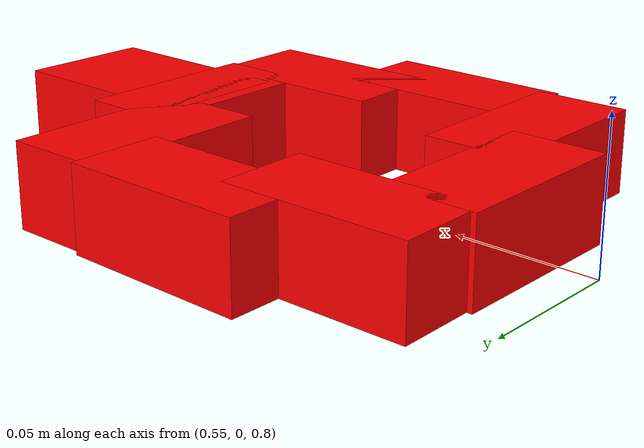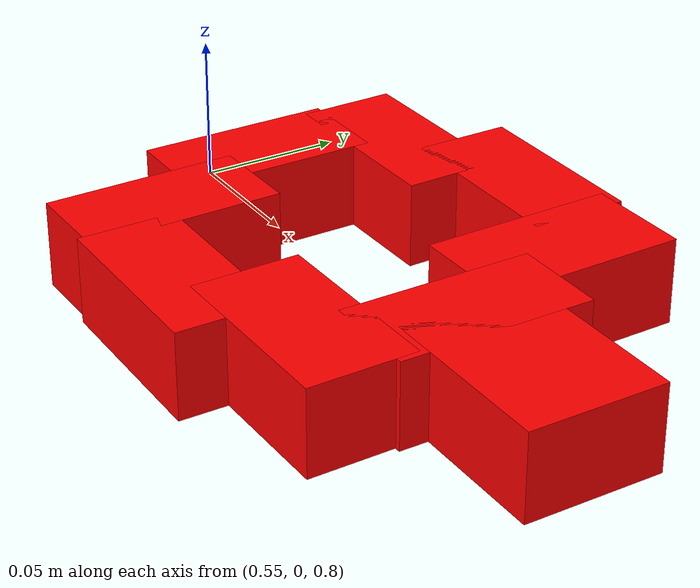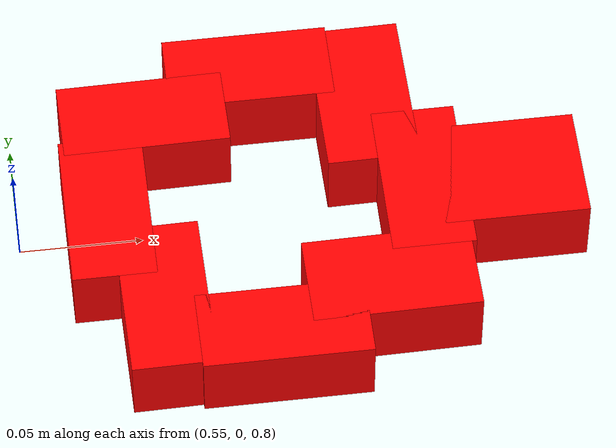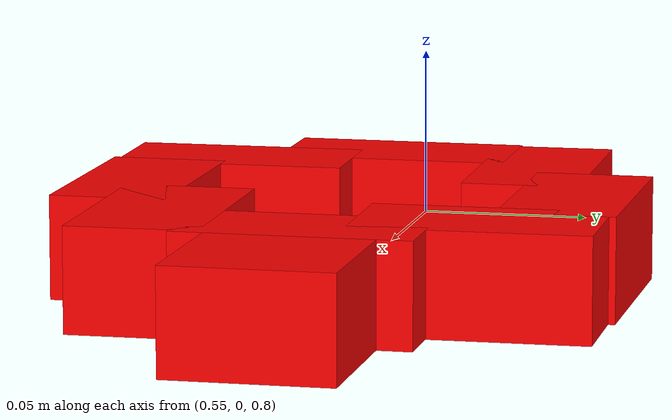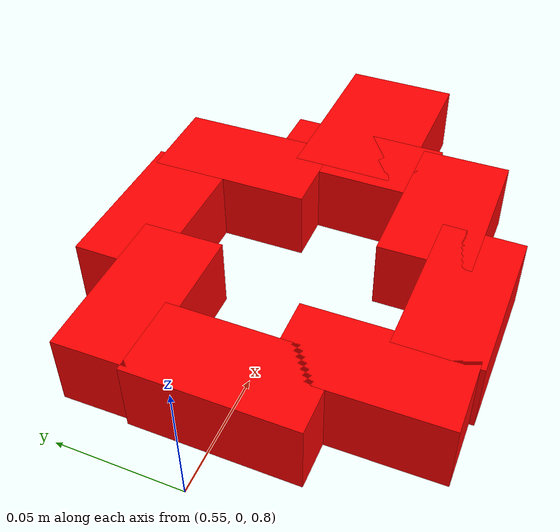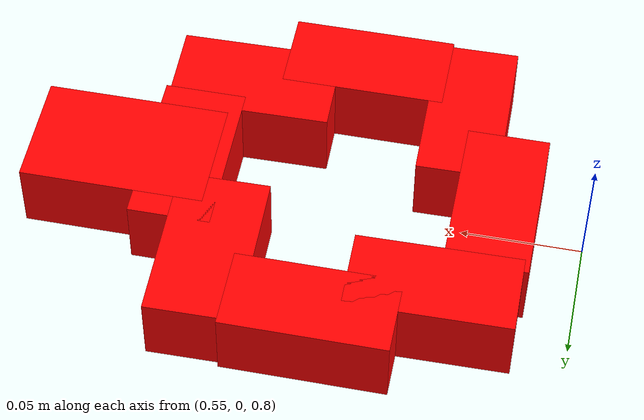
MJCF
<mujoco model="round-nut">
  <asset>
    <texture file="../textures/metal.png" name="tex-metal" type="2d" />
    <material name="metal" reflectance="0.7" texrepeat="1 1" texture="tex-metal" texuniform="true" />
  </asset>
  <worldbody>

      <body name="object0" pos="0.65 0.0 0.81">
        <joint damping="0.1" limited="false" name="object0:joint" type="free" />
        <geom condim="4" density="100" friction="0.95 0.3 0.1" group="1" name="object0" pos="-0.06367500000000001 0.0 0.0" rgba="1 0 0 1" size="0.016875 0.03375 0.015" solimp="0.998 0.998 0.001" solref="0.02 1" type="box" />
        <geom condim="4" density="100" friction="0.95 0.3 0.1" group="1" name="object1" pos="0.06367500000000001 0.0 0.0" rgba="1 0 0 1" size="0.016875 0.03375 0.015" solimp="0.998 0.998 0.001" solref="0.02 1" type="box" />
        <geom condim="4" density="100" friction="0.95 0.3 0.1" group="1" name="object2" pos="0.0 -0.06367500000000001 0.0" rgba="1 0 0 1" size="0.03375 0.016875 0.015" solimp="0.998 0.998 0.001" solref="0.02 1" type="box" />
        <geom condim="4" density="100" friction="0.95 0.3 0.1" group="1" name="object3" pos="0.0 0.06367500000000001 0.0" rgba="1 0 0 1" size="0.03375 0.016875 0.015" solimp="0.998 0.998 0.001" solref="0.02 1" type="box" />
        <geom axisangle="0 0 1 0.785398" condim="4" density="100" friction="0.95 0.3 0.1" group="1" name="object4" pos="-0.045 -0.045 0.0" rgba="1 0 0 1" size="0.016875 0.03375 0.015" solimp="0.998 0.998 0.001" solref="0.02 1" type="box" />
        <geom axisangle="0 0 1 0.785398" condim="4" density="100" friction="0.95 0.3 0.1" group="1" name="object5" pos="0.045 0.045 0.0" rgba="1 0 0 1" size="0.018750000000000003 0.03375 0.015" solimp="0.998 0.998 0.001" solref="0.02 1" type="box" />
        <geom axisangle="0 0 1 0.785398" condim="4" density="100" friction="0.95 0.3 0.1" group="1" name="object6" pos="0.045 -0.045 0.0" rgba="1 0 0 1" size="0.03375 0.018750000000000003 0.015" solimp="0.998 0.998 0.001" solref="0.02 1" type="box" />
        <geom axisangle="0 0 1 0.785398" condim="4" density="100" friction="0.95 0.3 0.1" group="1" name="object7" pos="-0.045 0.045 0.0" rgba="1 0 0 1" size="0.03375 0.016875 0.015" solimp="0.998 0.998 0.001" solref="0.02 1" type="box" />
        <geom condim="4" density="100" friction="0.95 0.3 0.1" group="1" name="object8" pos="0.09 0.0 0.0" rgba="1 0 0 1" size="0.037875000000000006 0.0238125 0.015" solimp="0.998 0.998 0.001" solref="0.02 1" type="box" />
      </body>

  </worldbody>
</mujoco>
